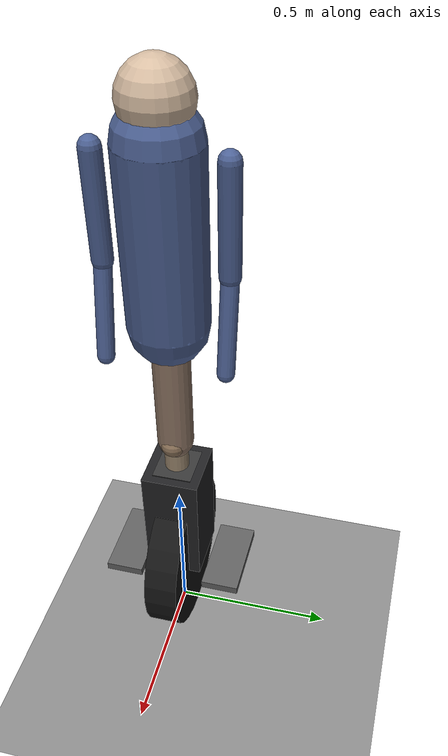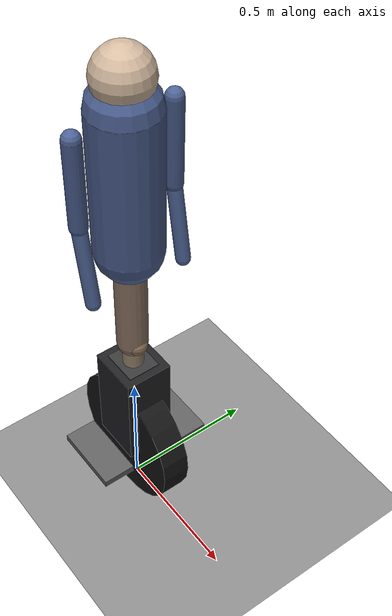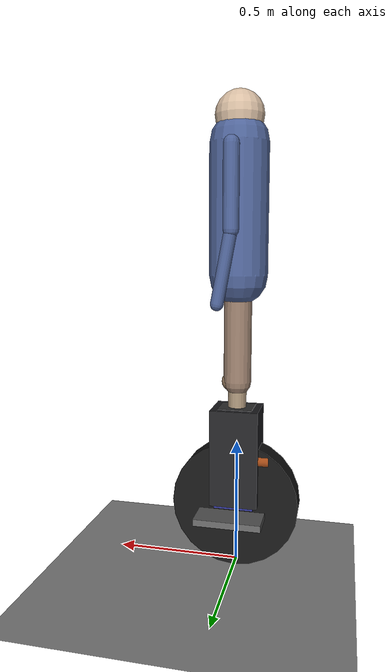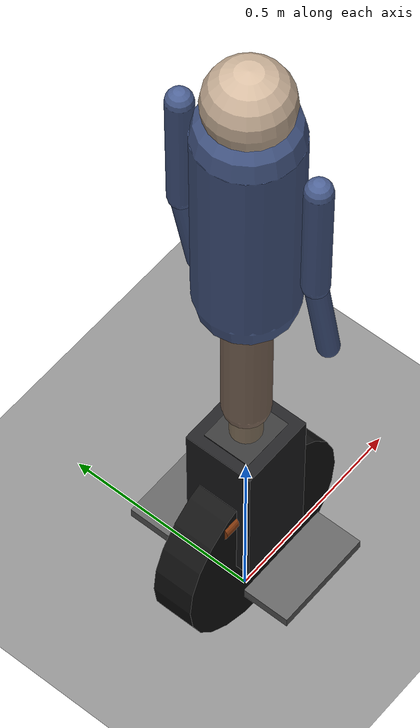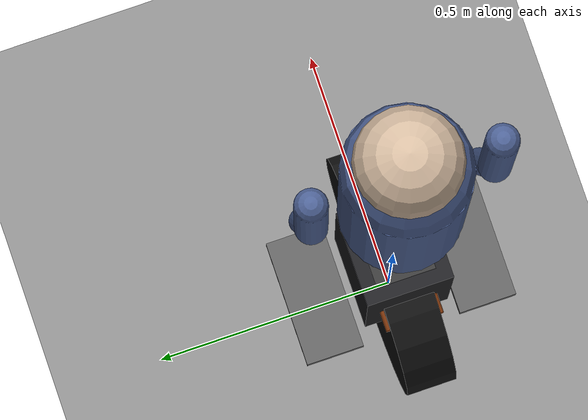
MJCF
<mujoco model="euc_scene">

  <compiler angle="degree" meshdir="meshes" autolimits="true"/>
  <option gravity="0 0 -9.81" timestep="0.001" integrator="RK4"/>

  <visual>
    <headlight ambient="0.35 0.35 0.35" diffuse="0.8 0.8 0.8" specular="0.1 0.1 0.1"/>
    <global offwidth="1920" offheight="1080"/>
  </visual>

  <default>
    <geom friction="0.8 0.01 0.01" condim="3"/>
    <joint armature="0.01" damping="2"/>
  </default>

  <contact>
    <exclude body1="wheel" body2="foot"/>
    <exclude body1="wheel" body2="shin"/>
    <exclude body1="wheel" body2="thigh"/>
    <exclude body1="wheel" body2="torso"/>
    <exclude body1="wheel" body2="upper_arm_L"/>
    <exclude body1="wheel" body2="upper_arm_R"/>
    <exclude body1="wheel" body2="forearm_L"/>
    <exclude body1="wheel" body2="forearm_R"/>
    <exclude body1="chassis" body2="shin"/>
    <pair geom1="shin_geom" geom2="ankle_pad_L"/>
    <pair geom1="shin_geom" geom2="ankle_pad_R"/>
  </contact>

  <worldbody>
    <light pos="2 -2 5" dir="-0.3 0.5 -1" diffuse="0.8 0.8 0.8" specular="0.2 0.2 0.2"/>
    <light pos="-2 2 5" dir=" 0.3 -0.5 -1" diffuse="0.5 0.5 0.5"/>

    <geom name="ground" type="plane" size="500 5 0.1"
          friction="1.6 0.005 0.005" rgba="0.55 0.55 0.55 1" condim="3"/>

    <body name="chassis" pos="0 0 0.254">
      <joint name="slide_x" type="slide" axis="1 0 0" damping="0" armature="0"/>
      <joint name="tilt"    type="hinge" axis="0 1 0" range="-65 65" damping="2"/>

      <!-- ---- MAIN BODY: single box sitting above axle ----
           Spans z = 0..390 mm above axle (centre at +195 mm).
           Width 176 mm, depth 190 mm — fits between rider's legs. -->
      <geom name="main_body" type="box"
            pos="0 0 0.195" size="0.095 0.088 0.195"
            mass="22" rgba="0.13 0.13 0.14 1"/>

      <!-- Battery: heavy, low, centred near axle for low CoM -->
      <geom name="battery" type="box"
            pos="0 0 0.055" size="0.078 0.075 0.068"
            mass="8" rgba="0.18 0.20 0.55 1"/>

      <!-- Top trim / handle area -->
      <geom name="top_cap" type="box"
            pos="0 0 0.375" size="0.068 0.060 0.018"
            mass="1" rgba="0.22 0.22 0.22 1"/>

      <geom name="pedal_L" type="box"
            pos="0 -0.163 -0.016" size="0.130 0.060 0.013"
            mass="0.5" rgba="0.38 0.38 0.38 1"/>
      <geom name="pedal_R" type="box"
            pos="0  0.163 -0.016" size="0.130 0.060 0.013"
            mass="0.5" rgba="0.38 0.38 0.38 1"/>

      <geom name="ankle_pad_L" type="cylinder"
            pos="-0.095 -0.035 0.185" euler="0 90 0" size="0.025 0.040"
            mass="0.1" rgba="0.62 0.28 0.08 1"/>
      <geom name="ankle_pad_R" type="cylinder"
            pos="-0.095  0.035 0.185" euler="0 90 0" size="0.025 0.040"
            mass="0.1" rgba="0.62 0.28 0.08 1"/>

      <!-- ---- WHEEL (hub motor) ---- -->
      <body name="wheel" pos="0 0 0">
        <joint name="wheel_spin" type="hinge" axis="0 1 0"
               damping="0.3" armature="0.15"/>
        <!-- fromto along Y = wheel axis, so cylinder axis = Y regardless of wheel_spin.
             Bottom of tire touches ground: chassis z=0.254, radius=0.254 → world z=0 ✓ -->
        <geom name="tire" type="cylinder" fromto="0 -0.052 0  0 0.052 0"
              size="0.254" mass="4.5" rgba="0.08 0.08 0.08 1"
              friction="1.8 0.005 0.005" condim="3"/>
        <geom name="rim"  type="cylinder" fromto="0 -0.040 0  0 0.040 0"
              size="0.190" mass="1.5" rgba="0.72 0.72 0.72 1"/>
      </body>

      <body name="foot" pos="0 0 0.065">

        <!-- Foot shape: heel 85 mm behind ankle, toe 155 mm forward,
             bottom 40 mm below ankle joint.
             Bottom z = 0.065 − 0.040 − 0.028 = −0.003 (chassis) ≈ pedal top ✓ -->
        <geom name="foot_geom" type="capsule"
              fromto="-0.085 0 -0.040  0.155 0 -0.040"
              size="0.028" mass="2.0" rgba="0.62 0.52 0.42 1"/>

        <body name="shin" pos="0 0 0">
          <joint name="ankle" type="hinge" axis="0 1 0"
                 range="-30 25" damping="10" armature="0.02"/>
          <geom name="shin_geom" type="capsule"
                fromto="0 0 0  0 0 0.43"
                size="0.037" mass="3.5" rgba="0.62 0.54 0.44 1"/>
          <geom name="kneecap" type="sphere"
                pos="0.025 0 0.43" size="0.038"
                mass="0" rgba="0.55 0.45 0.35 1"/>

          <!-- THIGH: knee joint at top of shin (430 mm above ankle) -->
          <body name="thigh" pos="0 0 0.43">
            <joint name="knee" type="hinge" axis="0 1 0"
                   range="-135 5" damping="18" armature="0.05"/>
            <geom name="thigh_geom" type="capsule"
                  fromto="0 0 0  0 0 0.42"
                  size="0.055" mass="9.5" rgba="0.57 0.47 0.40 1"/>

            <!-- TORSO: hip joint at top of thigh. Carries head mass. -->
            <body name="torso" pos="0 0 0.42">
              <joint name="hip" type="hinge" axis="0 1 0"
                     range="-35 105" damping="30" armature="0.08"/>
              <geom name="torso_geom" type="capsule"
                    fromto="0 0 0  0 0 0.50"
                    size="0.115" mass="35" rgba="0.30 0.38 0.58 1"/>
              <geom name="head" type="sphere"
                    pos="0 0 0.60" size="0.095"
                    mass="5" rgba="0.82 0.72 0.62 1"/>

              <!-- LEFT ARM -->
              <body name="upper_arm_L" pos="0 -0.17 0.47">
                <joint name="shoulder_L" type="hinge" axis="0 1 0"
                       range="-160 90" damping="5" armature="0.01"/>
                <geom type="capsule" fromto="0 0 0  0 0 -0.30"
                      size="0.030" mass="1.8" rgba="0.30 0.38 0.58 1"/>
                <body name="forearm_L" pos="0 0 -0.30">
                  <geom type="capsule" fromto="0 0 0  0.05 0 -0.27"
                        size="0.025" mass="1.2" rgba="0.30 0.38 0.58 1"/>
                </body>
              </body>

              <!-- RIGHT ARM -->
              <body name="upper_arm_R" pos="0 0.17 0.47">
                <joint name="shoulder_R" type="hinge" axis="0 1 0"
                       range="-160 90" damping="5" armature="0.01"/>
                <geom type="capsule" fromto="0 0 0  0 0 -0.30"
                      size="0.030" mass="1.8" rgba="0.30 0.38 0.58 1"/>
                <body name="forearm_R" pos="0 0 -0.30">
                  <geom type="capsule" fromto="0 0 0  0.05 0 -0.27"
                        size="0.025" mass="1.2" rgba="0.30 0.38 0.58 1"/>
                </body>
              </body>

            </body>  <!-- /torso -->
          </body>    <!-- /thigh -->
        </body>      <!-- /shin -->
      </body>        <!-- /foot -->

    </body>  <!-- /chassis -->
  </worldbody>

  <actuator>
    <motor    name="drive_motor"     joint="wheel_spin"
              gear="1" ctrllimited="true" ctrlrange="-120 120"/>
    <position name="ankle_ctrl"      joint="ankle"
              kp="250" ctrllimited="true" ctrlrange="-0.52 0.44"/>
    <position name="knee_ctrl"       joint="knee"
              kp="600" ctrllimited="true" ctrlrange="-2.35 0.09"/>
    <position name="hip_ctrl"        joint="hip"
              kp="900" ctrllimited="true" ctrlrange="-0.61 1.83"/>
    <position name="shoulder_L_ctrl" joint="shoulder_L"
              kp="120" ctrllimited="true" ctrlrange="-2.79 1.57"/>
    <position name="shoulder_R_ctrl" joint="shoulder_R"
              kp="120" ctrllimited="true" ctrlrange="-2.79 1.57"/>
  </actuator>

  <sensor>
    <framequat   name="imu_quat"    objtype="body" objname="chassis"/>
    <frameangvel name="imu_gyro"    objtype="body" objname="chassis"/>
    <framelinvel name="imu_linvel"  objtype="body" objname="chassis"/>
    <framepos    name="chassis_pos" objtype="body" objname="chassis"/>
    <jointvel    name="wheel_vel"   joint="wheel_spin"/>
    <jointvel    name="tilt_vel"    joint="tilt"/>
    <jointpos    name="tilt_pos"    joint="tilt"/>
  </sensor>

</mujoco>
